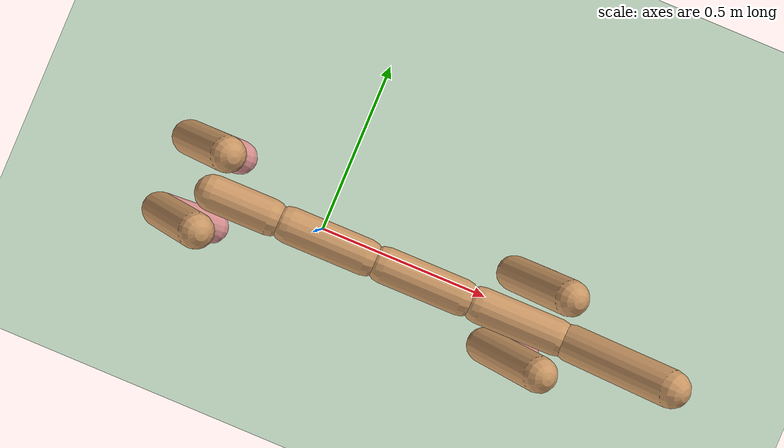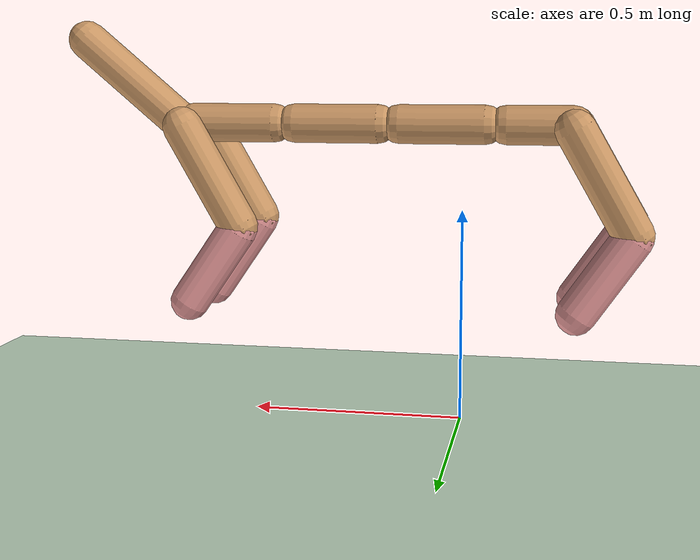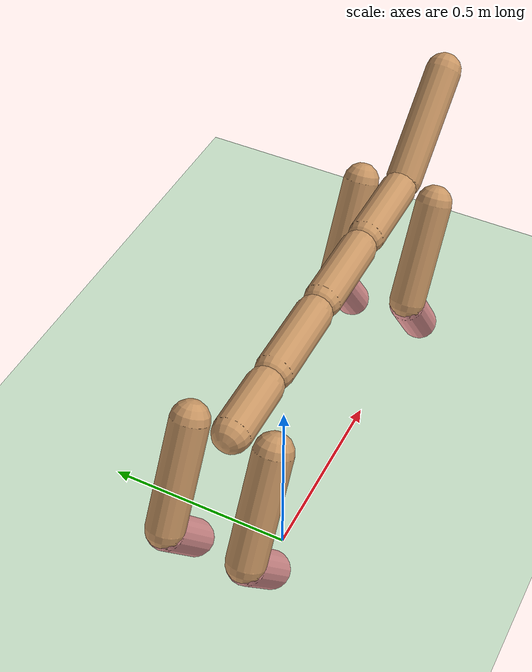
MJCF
<mujoco model="cheetah">
  <compiler angle="radian" coordinate="local" inertiafromgeom="true" settotalmass="14"/>
  <default>
    <joint armature=".1" damping=".01" limited="true" solimplimit="0 .8 .03" solreflimit=".02 1" stiffness="8"/>
    <geom conaffinity="0" condim="3" contype="1" friction=".4 .1 .1" rgba="0.8 0.6 .4 1" solimp="0.0 0.8 0.01" solref="0.02 1"/>
    <motor ctrllimited="true" ctrlrange="-1 1"/>
  </default>
  <size nstack="300000" nuser_geom="1"/>
  <option gravity="0 0 -9.81" timestep="0.01"/>
  <asset>
    <texture builtin="gradient" height="100" rgb1="1 1 1" rgb2="0 0 0" type="skybox" width="100"/>
    <texture builtin="flat" height="1278" mark="cross" markrgb="1 1 1" name="texgeom" random="0.01" rgb1="0.8 0.6 0.4" rgb2="0.8 0.6 0.4" type="cube" width="127"/>
    <texture builtin="checker" height="100" name="texplane" rgb1="0 0 0" rgb2="0.8 0.8 0.8" type="2d" width="100"/>
    <material name="MatPlane" reflectance="0.5" shininess="1" specular="1" texrepeat="60 60" texture="texplane"/>
    <material name="geom" texture="texgeom" texuniform="true"/>
  </asset>
  <worldbody>
    <light cutoff="100" diffuse="1 1 1" dir="-0 0 -1.3" directional="true" exponent="1" pos="0 0 1.3" specular=".1 .1 .1"/>
    <geom conaffinity="1" condim="3" material="MatPlane" name="floor" pos="0 0 0" rgba="0.8 0.9 0.8 1" size="40 40 40" type="plane"/>
    <body name="torso_1" pos="0 0 .7">
      <camera name="track" mode="trackcom" pos="0 -3 0.3" xyaxes="1 0 0 0 0 1"/>
      <joint armature="0" axis="1 0 0" damping="0" limited="false" name="rootx" pos="0 0 0" stiffness="0" type="slide"/>
      <joint armature="0" axis="0 0 1" damping="0" limited="false" name="rootz" pos="0 0 0" stiffness="0" type="slide"/>
      <joint armature="0" axis="0 1 0" damping="0" limited="false" name="rooty" pos="0 0 0" stiffness="0" type="hinge"/>
      <geom fromto="-0.25 0 0 -0.1 0 0" name="torso_1" size="0.046" type="capsule"/>

      <!-- Back legs -->
      <body name="back_legs" pos="-0.25 0 0">
        <!-- Left back leg -->
        <body name="lbthigh" pos="0 0.1 0">
          <joint axis="0 1 0" damping="4.5" name="lbthigh" pos="0 0 0" range="-1 .7" stiffness="180" type="hinge"/>
          <geom axisangle="0 1 0 .52" name="lbthigh" pos="-.07 0 -.12" size="0.046 .133" type="capsule"/>
          <body name="lbshin" pos="-.14 0 -.24">
            <joint axis="0 1 0" damping="3" name="lbshin" pos="0 0 0" range="-1.2 .87" stiffness="120" type="hinge"/>
            <geom axisangle="0 1 0 -.6" name="lbshin" pos=".065 0 -.09" rgba="0.9 0.6 0.6 1" size="0.046 .106" type="capsule"/>
          </body>
        </body>

        <!-- Right back leg -->
        <body name="rbthigh" pos="0 -0.1 0">
          <joint axis="0 1 0" damping="4.5" name="rbthigh" pos="0 0 0" range="-1 .7" stiffness="180" type="hinge"/>
          <geom axisangle="0 1 0 .52" name="rbthigh" pos="-.07 0 -.12" size="0.046 .133" type="capsule"/>
          <body name="rbshin" pos="-.14 0 -.24">
            <joint axis="0 1 0" damping="3" name="rbshin" pos="0 0 0" range="-1.2 .87" stiffness="120" type="hinge"/>
            <geom axisangle="0 1 0 -.6" name="rbshin" pos=".065 0 -.09" rgba="0.9 0.6 0.6 1" size="0.046 .106" type="capsule"/>
          </body>
        </body>

      <body name="torso_2" pos=".25 0 0">
        <joint axis="0 1 0" name="torso_joint_1" pos="0 0 0" range="0. 1.0" stiffness="200" type="hinge"/>
        <geom fromto="-0.05 0 0 .15 0 0" name="torso_2" size="0.046" type="capsule"/>

        <body name="torso_3" pos=".25 0 0">
          <joint axis="0 1 0" name="torso_joint_2" pos="0 0 0" range="0. 1.0" stiffness="200" type="hinge"/>
          <geom fromto="-0.05 0 0 .15 0 0" name="torso_3" size="0.046" type="capsule"/>

          <body name="torso_4" pos=".25 0 0">
            <joint axis="0 1 0" name="torso_joint_3" pos="0 0 0" range="0. 1.0" stiffness="200" type="hinge"/>
            <geom fromto="-0.05 0 0 .15 0 0" name="torso_4" size="0.046" type="capsule"/>
            <geom axisangle="0 1 0 .87" name="head" pos=".3 0 .1" size="0.046 .15" type="capsule"/>

            <!-- Front legs -->
            <body name="front_legs" pos="0.15 0 0">
              <!-- Left front leg -->
              <body name="lfthigh" pos="0 0.1 0">
                <joint axis="0 1 0" damping="4.5" name="lfthigh" pos="0 0 0" range="-1 .7" stiffness="180" type="hinge"/>
                <geom axisangle="0 1 0 .52" name="lfthigh" pos="-.07 0 -.12" size="0.046 .133" type="capsule"/>
                <body name="lfshin" pos="-.14 0 -.24">
                  <joint axis="0 1 0" damping="3" name="lfshin" pos="0 0 0" range="-1.2 .87" stiffness="120" type="hinge"/>
                  <geom axisangle="0 1 0 -.6" name="lfshin" pos=".065 0 -.09" rgba="0.9 0.6 0.6 1" size="0.046 .106" type="capsule"/>
                </body>
              </body>

              <!-- Right front leg -->
              <body name="rfthigh" pos="0 -0.1 0">
                <joint axis="0 1 0" damping="4.5" name="rfthigh" pos="0 0 0" range="-1 .7" stiffness="180" type="hinge"/>
                <geom axisangle="0 1 0 .52" name="rfthigh" pos="-.07 0 -.12" size="0.046 .133" type="capsule"/>
                <body name="rfshin" pos="-.14 0 -.24">
                  <joint axis="0 1 0" damping="3" name="rfshin" pos="0 0 0" range="-1.2 .87" stiffness="120" type="hinge"/>
                  <geom axisangle="0 1 0 -.6" name="rfshin" pos=".065 0 -.09" rgba="0.9 0.6 0.6 1" size="0.046 .106" type="capsule"/>
                </body>
              </body>
            </body>
            </body>
          </body>
        </body>
      </body>
    </body>
  </worldbody>

  <actuator>
    <!-- Leg actuators -->
    <motor gear="120" joint="lfthigh" name="lfthigh"/>
    <motor gear="60" joint="lfshin" name="lfshin"/>
    <motor gear="120" joint="rfthigh" name="rfthigh"/>
    <motor gear="60" joint="rfshin" name="rfshin"/>
    <motor gear="120" joint="lbthigh" name="lbthigh"/>
    <motor gear="90" joint="lbshin" name="lbshin"/>
    <motor gear="120" joint="rbthigh" name="rbthigh"/>
    <motor gear="90" joint="rbshin" name="rbshin"/>

    <!-- Torso flexibility actuators -->
  </actuator>
</mujoco>
